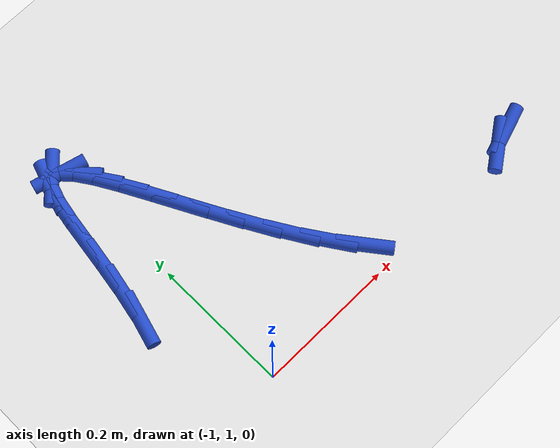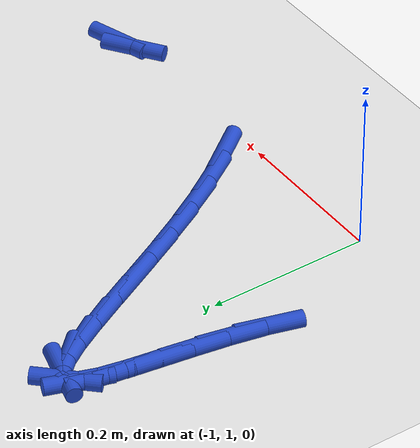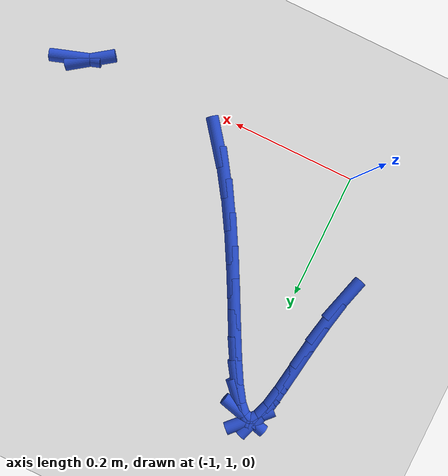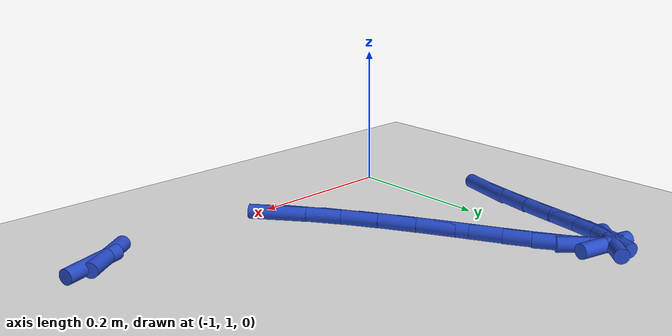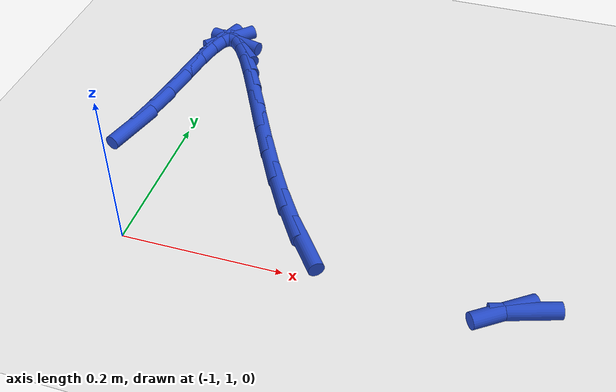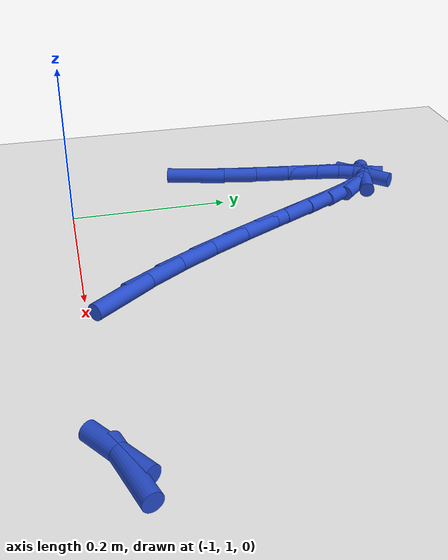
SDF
<sdf version="1.6">
 <world name="default">
  <model name="ground_plane">
   <static>1</static>
   <link name="link">
    <collision name="collision">
     <geometry><plane><normal>0 0 1</normal><size>100 100</size></plane></geometry>
     <surface><friction><ode><mu>100</mu><mu2>50</mu2></ode></friction></surface>
    </collision>
    <visual name="visual">
     <cast_shadows>0</cast_shadows>
     <geometry><plane><normal>0 0 1</normal><size>100 100</size></plane></geometry>
     <material>
      <script><uri>file://media/materials/scripts/gazebo.material</uri><name>Gazebo/WhiteGlow</name></script>
     </material>
    </visual>
   </link>
  </model>
  <model name="line">
   <link name="link_33">
    <pose>-0.5305026169132392 1.0181763318959782 0.01 0 1.57 0.316375865510194</pose>
    <collision name="collision">
     <geometry><cylinder><radius>0.01</radius><length>0.08</length></cylinder></geometry>
    </collision>
    <visual name="visual">
     <material>
      <script><name>Gazebo/Blue</name><uri>file://media/materials/scripts/gazebo.material</uri></script>
     </material>
     <geometry><cylinder><radius>0.01</radius><length>0.08</length></cylinder></geometry>
    </visual>
   </link>
   <link name="link_34">
    <pose>-0.5528246898223239 1.0108687084722598 0.01 0 1.57 0.6171004172588965</pose>
    <collision name="collision">
     <geometry><cylinder><radius>0.01</radius><length>0.08</length></cylinder></geometry>
    </collision>
    <visual name="visual">
     <material>
      <script><name>Gazebo/Blue</name><uri>file://media/materials/scripts/gazebo.material</uri></script>
     </material>
     <geometry><cylinder><radius>0.01</radius><length>0.08</length></cylinder></geometry>
    </visual>
   </link>
   <link name="link_41">
    <pose>-0.7867437022098097 1.040058209129539 0.01 0 1.57 -0.915073961564052</pose>
    <collision name="collision">
     <geometry><cylinder><radius>0.01</radius><length>0.08</length></cylinder></geometry>
    </collision>
    <visual name="visual">
     <material>
      <script><name>Gazebo/Blue</name><uri>file://media/materials/scripts/gazebo.material</uri></script>
     </material>
     <geometry><cylinder><radius>0.01</radius><length>0.08</length></cylinder></geometry>
    </visual>
   </link>
   <link name="link_42">
    <pose>-0.8163433691152232 1.0785356471392544 0.01 0 1.57 -0.9853502689129733</pose>
    <collision name="collision">
     <geometry><cylinder><radius>0.01</radius><length>0.08</length></cylinder></geometry>
    </collision>
    <visual name="visual">
     <material>
      <script><name>Gazebo/Blue</name><uri>file://media/materials/scripts/gazebo.material</uri></script>
     </material>
     <geometry><cylinder><radius>0.01</radius><length>0.08</length></cylinder></geometry>
    </visual>
   </link>
   <link name="link_43">
    <pose>-0.8445395217082511 1.1210650538484415 0.01 0 1.57 -1.0342121848393835</pose>
    <collision name="collision">
     <geometry><cylinder><radius>0.01</radius><length>0.08</length></cylinder></geometry>
    </collision>
    <visual name="visual">
     <material>
      <script><name>Gazebo/Blue</name><uri>file://media/materials/scripts/gazebo.material</uri></script>
     </material>
     <geometry><cylinder><radius>0.01</radius><length>0.08</length></cylinder></geometry>
    </visual>
   </link>
   <link name="link_44">
    <pose>-0.8712406985416061 1.1659563829477138 0.01 0 1.57 -1.0670272119185962</pose>
    <collision name="collision">
     <geometry><cylinder><radius>0.01</radius><length>0.08</length></cylinder></geometry>
    </collision>
    <visual name="visual">
     <material>
      <script><name>Gazebo/Blue</name><uri>file://media/materials/scripts/gazebo.material</uri></script>
     </material>
     <geometry><cylinder><radius>0.01</radius><length>0.08</length></cylinder></geometry>
    </visual>
   </link>
   <link name="link_45">
    <pose>-0.8963554381680019 1.2115195881276852 0.01 0 1.57 -1.0864575369189962</pose>
    <collision name="collision">
     <geometry><cylinder><radius>0.01</radius><length>0.08</length></cylinder></geometry>
    </collision>
    <visual name="visual">
     <material>
      <script><name>Gazebo/Blue</name><uri>file://media/materials/scripts/gazebo.material</uri></script>
     </material>
     <geometry><cylinder><radius>0.01</radius><length>0.08</length></cylinder></geometry>
    </visual>
   </link>
   <link name="link_46">
    <pose>-0.9197922791401514 1.2560646230789696 0.01 0 1.57 -1.0929278478432178</pose>
    <collision name="collision">
     <geometry><cylinder><radius>0.01</radius><length>0.08</length></cylinder></geometry>
    </collision>
    <visual name="visual">
     <material>
      <script><name>Gazebo/Blue</name><uri>file://media/materials/scripts/gazebo.material</uri></script>
     </material>
     <geometry><cylinder><radius>0.01</radius><length>0.08</length></cylinder></geometry>
    </visual>
   </link>
   <link name="link_47">
    <pose>-0.9414597600107681 1.2979014414921815 0.01 0 1.57 -1.0841840560757736</pose>
    <collision name="collision">
     <geometry><cylinder><radius>0.01</radius><length>0.08</length></cylinder></geometry>
    </collision>
    <visual name="visual">
     <material>
      <script><name>Gazebo/Blue</name><uri>file://media/materials/scripts/gazebo.material</uri></script>
     </material>
     <geometry><cylinder><radius>0.01</radius><length>0.08</length></cylinder></geometry>
    </visual>
   </link>
   <link name="link_48">
    <pose>-0.9612664193325654 1.3353399970579345 0.01 0 1.57 -1.0530953673450079</pose>
    <collision name="collision">
     <geometry><cylinder><radius>0.01</radius><length>0.08</length></cylinder></geometry>
    </collision>
    <visual name="visual">
     <material>
      <script><name>Gazebo/Blue</name><uri>file://media/materials/scripts/gazebo.material</uri></script>
     </material>
     <geometry><cylinder><radius>0.01</radius><length>0.08</length></cylinder></geometry>
    </visual>
   </link>
   <link name="link_49">
    <pose>-0.979120795658256 1.3666902434668424 0.01 0 1.57 -0.9799783858928658</pose>
    <collision name="collision">
     <geometry><cylinder><radius>0.01</radius><length>0.08</length></cylinder></geometry>
    </collision>
    <visual name="visual">
     <material>
      <script><name>Gazebo/Blue</name><uri>file://media/materials/scripts/gazebo.material</uri></script>
     </material>
     <geometry><cylinder><radius>0.01</radius><length>0.08</length></cylinder></geometry>
    </visual>
   </link>
   <link name="link_50">
    <pose>-0.9949314275405539 1.3902621344095194 0.01 0 1.57 -0.8008065872185016</pose>
    <collision name="collision">
     <geometry><cylinder><radius>0.01</radius><length>0.08</length></cylinder></geometry>
    </collision>
    <visual name="visual">
     <material>
      <script><name>Gazebo/Blue</name><uri>file://media/materials/scripts/gazebo.material</uri></script>
     </material>
     <geometry><cylinder><radius>0.01</radius><length>0.08</length></cylinder></geometry>
    </visual>
   </link>
   <link name="link_51">
    <pose>-1.0086068535321717 1.4043656235765793 0.01 0 1.57 -0.25177800766509945</pose>
    <collision name="collision">
     <geometry><cylinder><radius>0.01</radius><length>0.08</length></cylinder></geometry>
    </collision>
    <visual name="visual">
     <material>
      <script><name>Gazebo/Blue</name><uri>file://media/materials/scripts/gazebo.material</uri></script>
     </material>
     <geometry><cylinder><radius>0.01</radius><length>0.08</length></cylinder></geometry>
    </visual>
   </link>
   <link name="link_52">
    <pose>-1.0200556121858233 1.4073106646586369 0.01 0 1.57 0.8142496472517692</pose>
    <collision name="collision">
     <geometry><cylinder><radius>0.01</radius><length>0.08</length></cylinder></geometry>
    </collision>
    <visual name="visual">
     <material>
      <script><name>Gazebo/Blue</name><uri>file://media/materials/scripts/gazebo.material</uri></script>
     </material>
     <geometry><cylinder><radius>0.01</radius><length>0.08</length></cylinder></geometry>
    </visual>
   </link>
   <link name="link_53">
    <pose>-1.0292241540810445 1.3975971975778665 0.01 0 1.57 1.243759623597403</pose>
    <collision name="collision">
     <geometry><cylinder><radius>0.01</radius><length>0.08</length></cylinder></geometry>
    </collision>
    <visual name="visual">
     <material>
      <script><name>Gazebo/Blue</name><uri>file://media/materials/scripts/gazebo.material</uri></script>
     </material>
     <geometry><cylinder><radius>0.01</radius><length>0.08</length></cylinder></geometry>
    </visual>
   </link>
   <link name="link_54">
    <pose>-1.0365267364347919 1.3760694531738997 0.01 0 1.57 1.3739480152820807</pose>
    <collision name="collision">
     <geometry><cylinder><radius>0.01</radius><length>0.08</length></cylinder></geometry>
    </collision>
    <visual name="visual">
     <material>
      <script><name>Gazebo/Blue</name><uri>file://media/materials/scripts/gazebo.material</uri></script>
     </material>
     <geometry><cylinder><radius>0.01</radius><length>0.08</length></cylinder></geometry>
    </visual>
   </link>
   <link name="link_55">
    <pose>-1.0426928038604086 1.3451511416941782 0.01 0 1.57 1.419671485891712</pose>
    <collision name="collision">
     <geometry><cylinder><radius>0.01</radius><length>0.08</length></cylinder></geometry>
    </collision>
    <visual name="visual">
     <material>
      <script><name>Gazebo/Blue</name><uri>file://media/materials/scripts/gazebo.material</uri></script>
     </material>
     <geometry><cylinder><radius>0.01</radius><length>0.08</length></cylinder></geometry>
    </visual>
   </link>
   <link name="link_56">
    <pose>-1.048457689143691 1.3072954804262291 0.01 0 1.57 1.4277307308949199</pose>
    <collision name="collision">
     <geometry><cylinder><radius>0.01</radius><length>0.08</length></cylinder></geometry>
    </collision>
    <visual name="visual">
     <material>
      <script><name>Gazebo/Blue</name><uri>file://media/materials/scripts/gazebo.material</uri></script>
     </material>
     <geometry><cylinder><radius>0.01</radius><length>0.08</length></cylinder></geometry>
    </visual>
   </link>
   <link name="link_57">
    <pose>-1.054556725070434 1.2649556866575782 0.01 0 1.57 1.4106206470998635</pose>
    <collision name="collision">
     <geometry><cylinder><radius>0.01</radius><length>0.08</length></cylinder></geometry>
    </collision>
    <visual name="visual">
     <material>
      <script><name>Gazebo/Blue</name><uri>file://media/materials/scripts/gazebo.material</uri></script>
     </material>
     <geometry><cylinder><radius>0.01</radius><length>0.08</length></cylinder></geometry>
    </visual>
   </link>
   <link name="link_58">
    <pose>-1.061725244426434 1.2205849776757518 0.01 0 1.57 1.3693858814854973</pose>
    <collision name="collision">
     <geometry><cylinder><radius>0.01</radius><length>0.08</length></cylinder></geometry>
    </collision>
    <visual name="visual">
     <material>
      <script><name>Gazebo/Blue</name><uri>file://media/materials/scripts/gazebo.material</uri></script>
     </material>
     <geometry><cylinder><radius>0.01</radius><length>0.08</length></cylinder></geometry>
    </visual>
   </link>
   <link name="link_59">
    <pose>-1.0706985799974862 1.1766365707682762 0.01 0 1.57 1.2974924308471159</pose>
    <collision name="collision">
     <geometry><cylinder><radius>0.01</radius><length>0.08</length></cylinder></geometry>
    </collision>
    <visual name="visual">
     <material>
      <script><name>Gazebo/Blue</name><uri>file://media/materials/scripts/gazebo.material</uri></script>
     </material>
     <geometry><cylinder><radius>0.01</radius><length>0.08</length></cylinder></geometry>
    </visual>
   </link>
  </model>
 </world>
</sdf>
